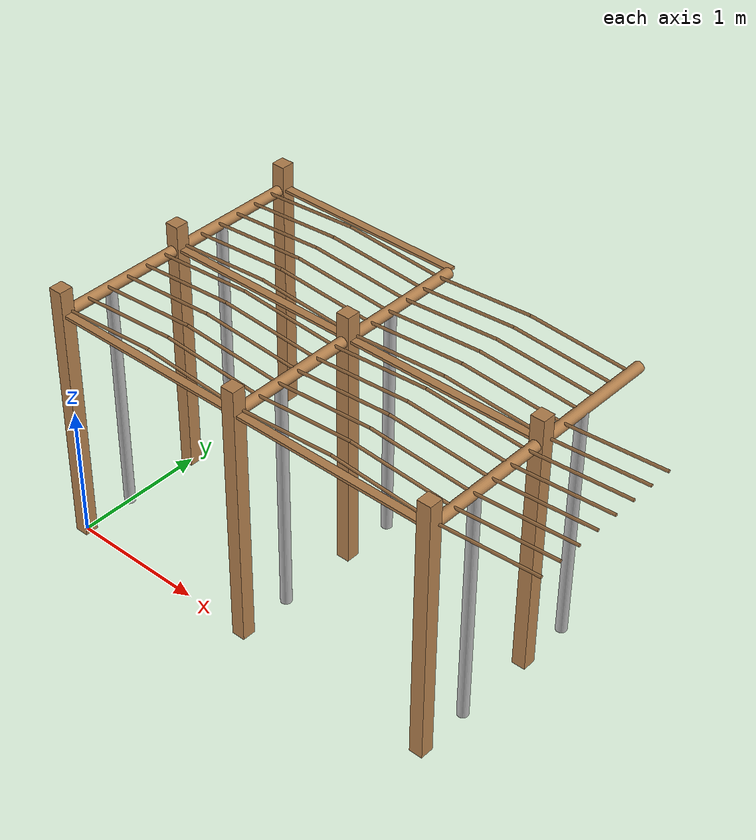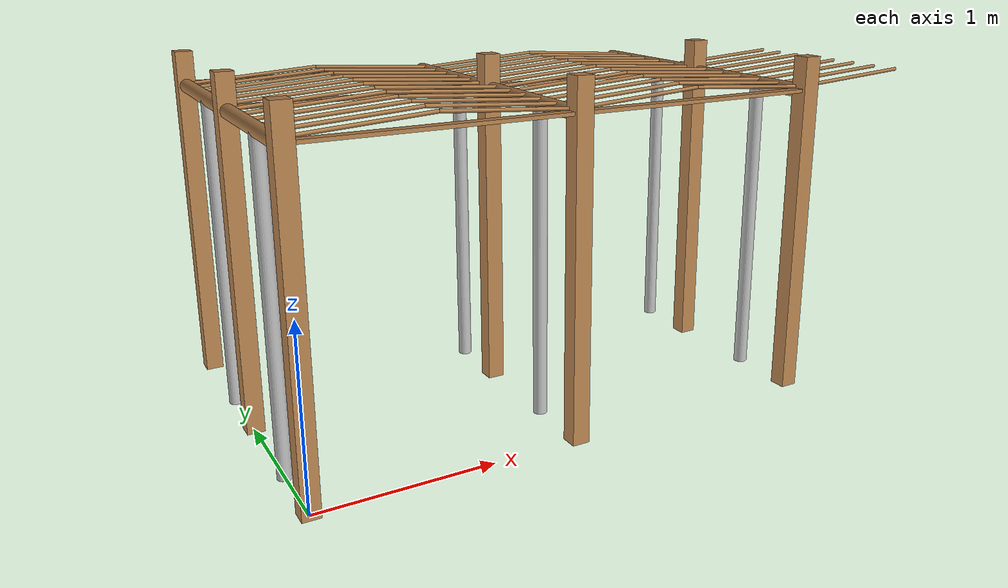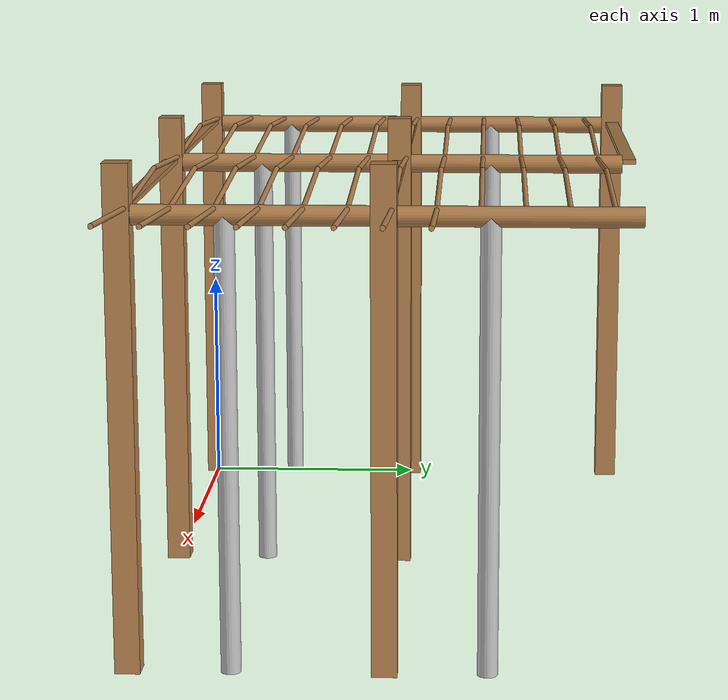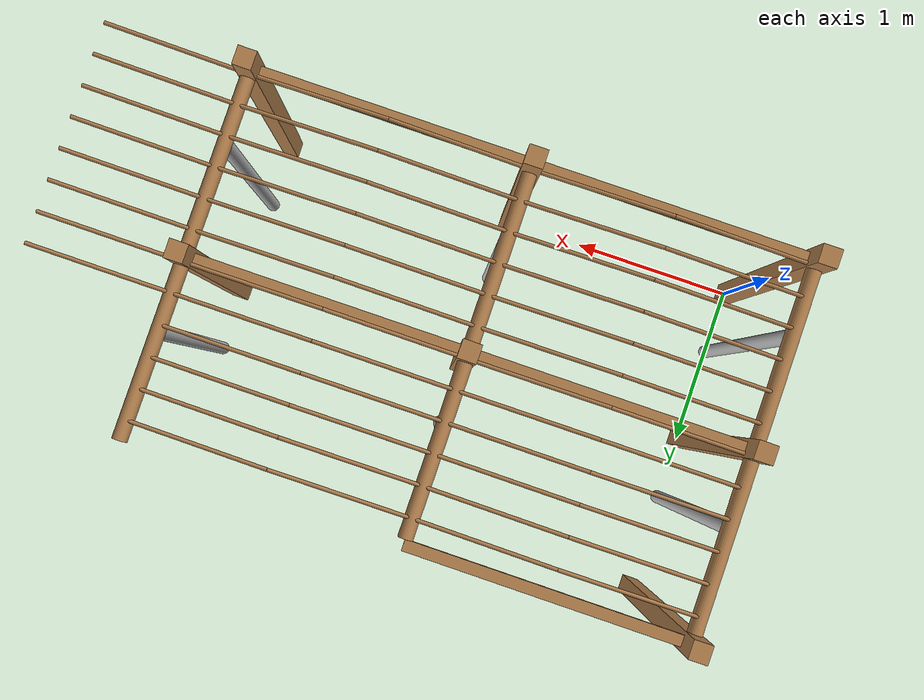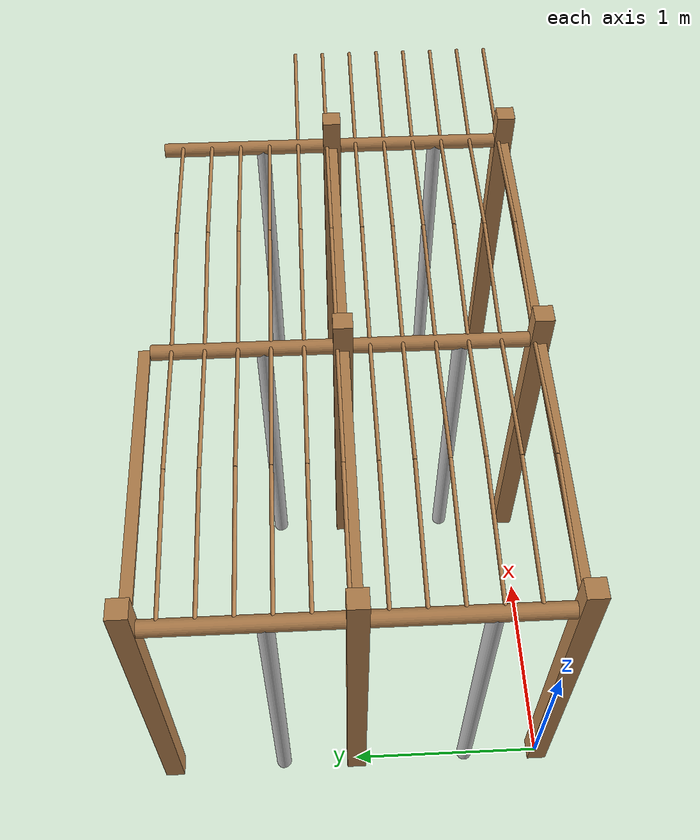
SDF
<sdf version="1.4">
 <model name="pergola">
  <include><name>post_0</name><uri>model://post</uri></include>
  <include><name>post_1</name><pose>0.0 1.0 0 0 0 0</pose><uri>model://post</uri></include>
  <include><name>post_2</name><pose>0.0 2.0 0 0 0 0</pose><uri>model://post</uri></include>
  <include><name>post_11</name><pose>1.5 0.0 0 0 0 0</pose><uri>model://post</uri></include>
  <include><name>post_12</name><pose>1.5 1.0 0 0 0 0</pose><uri>model://post</uri></include>
  <include><name>post_22</name><pose>3.0 0.0 0 0 0 0</pose><uri>model://post</uri></include>
  <include><name>post_23</name><pose>3.0 1.0 0 0 0 0</pose><uri>model://post</uri></include>
  <link name="beam_0">
   <pose>0.75 0.0 1.81 0 0 0</pose>
   <collision name="collision"><geometry><box><size>1.5 0.06 0.02</size></box></geometry></collision>
   <visual name="visual">
    <geometry><box><size>1.5 0.06 0.02</size></box></geometry>
    <material><script><name>Gazebo/Wood</name></script></material>
   </visual>
   <inertial>
    <mass>5</mass>
    <inertia>
     <ixx>0.0016666666666666668</ixx>
     <ixy>0.0</ixy>
     <ixz>0.0</ixz>
     <iyy>0.9390000000000001</iyy>
     <iyz>0.0</iyz>
     <izz>0.9376666666666665</izz>
    </inertia>
   </inertial>
  </link>
  <link name="beam_1">
   <pose>0.75 1.0 1.81 0 0 0</pose>
   <collision name="collision"><geometry><box><size>1.5 0.06 0.02</size></box></geometry></collision>
   <visual name="visual">
    <geometry><box><size>1.5 0.06 0.02</size></box></geometry>
    <material><script><name>Gazebo/Wood</name></script></material>
   </visual>
   <inertial>
    <mass>5</mass>
    <inertia>
     <ixx>0.0016666666666666668</ixx>
     <ixy>0.0</ixy>
     <ixz>0.0</ixz>
     <iyy>0.9390000000000001</iyy>
     <iyz>0.0</iyz>
     <izz>0.9376666666666665</izz>
    </inertia>
   </inertial>
  </link>
  <link name="beam_2">
   <pose>0.75 2.0 1.81 0 0 0</pose>
   <collision name="collision"><geometry><box><size>1.5 0.06 0.02</size></box></geometry></collision>
   <visual name="visual">
    <geometry><box><size>1.5 0.06 0.02</size></box></geometry>
    <material><script><name>Gazebo/Wood</name></script></material>
   </visual>
   <inertial>
    <mass>5</mass>
    <inertia>
     <ixx>0.0016666666666666668</ixx>
     <ixy>0.0</ixy>
     <ixz>0.0</ixz>
     <iyy>0.9390000000000001</iyy>
     <iyz>0.0</iyz>
     <izz>0.9376666666666665</izz>
    </inertia>
   </inertial>
  </link>
  <link name="beam_11">
   <pose>2.25 0.0 1.81 0 0 0</pose>
   <collision name="collision"><geometry><box><size>1.5 0.06 0.02</size></box></geometry></collision>
   <visual name="visual">
    <geometry><box><size>1.5 0.06 0.02</size></box></geometry>
    <material><script><name>Gazebo/Wood</name></script></material>
   </visual>
   <inertial>
    <mass>5</mass>
    <inertia>
     <ixx>0.0016666666666666668</ixx>
     <ixy>0.0</ixy>
     <ixz>0.0</ixz>
     <iyy>0.9390000000000001</iyy>
     <iyz>0.0</iyz>
     <izz>0.9376666666666665</izz>
    </inertia>
   </inertial>
  </link>
  <link name="beam_12">
   <pose>2.25 1.0 1.81 0 0 0</pose>
   <collision name="collision"><geometry><box><size>1.5 0.06 0.02</size></box></geometry></collision>
   <visual name="visual">
    <geometry><box><size>1.5 0.06 0.02</size></box></geometry>
    <material><script><name>Gazebo/Wood</name></script></material>
   </visual>
   <inertial>
    <mass>5</mass>
    <inertia>
     <ixx>0.0016666666666666668</ixx>
     <ixy>0.0</ixy>
     <ixz>0.0</ixz>
     <iyy>0.9390000000000001</iyy>
     <iyz>0.0</iyz>
     <izz>0.9376666666666665</izz>
    </inertia>
   </inertial>
  </link>
  <include><name>tree_0</name><pose>0.0 0.4 0 0 0 0</pose><uri>model://tree_trunk</uri></include>
  <include><name>tree_1</name><pose>0.0 1.4 0 0 0 0</pose><uri>model://tree_trunk</uri></include>
  <include><name>tree_10</name><pose>1.5 0.4 0 0 0 0</pose><uri>model://tree_trunk</uri></include>
  <include><name>tree_11</name><pose>1.5 1.4 0 0 0 0</pose><uri>model://tree_trunk</uri></include>
  <include><name>tree_20</name><pose>3.0 0.4 0 0 0 0</pose><uri>model://tree_trunk</uri></include>
  <include><name>tree_21</name><pose>3.0 1.4 0 0 0 0</pose><uri>model://tree_trunk</uri></include>
  <link name="baseBranch_0">
   <pose>0.0 0.5 1.8 1.5707963267948966 0 0</pose>
   <collision name="collision">
    <geometry><cylinder><radius>0.04</radius><length>0.94</length></cylinder></geometry>
   </collision>
   <visual name="visual">
    <geometry><cylinder><radius>0.04</radius><length>0.94</length></cylinder></geometry>
    <material><script><name>Gazebo/WoodFloor</name></script></material>
   </visual>
   <inertial>
    <mass>10</mass>
    <inertia>
     <ixx>0.7403333333333334</ixx>
     <ixy>0.0</ixy>
     <ixz>0.0</ixz>
     <iyy>0.7403333333333334</iyy>
     <iyz>0.0</iyz>
     <izz>0.008</izz>
    </inertia>
   </inertial>
  </link>
  <link name="baseBranch_1">
   <pose>0.0 1.5 1.8 1.5707963267948966 0 0</pose>
   <collision name="collision">
    <geometry><cylinder><radius>0.04</radius><length>0.94</length></cylinder></geometry>
   </collision>
   <visual name="visual">
    <geometry><cylinder><radius>0.04</radius><length>0.94</length></cylinder></geometry>
    <material><script><name>Gazebo/WoodFloor</name></script></material>
   </visual>
   <inertial>
    <mass>10</mass>
    <inertia>
     <ixx>0.7403333333333334</ixx>
     <ixy>0.0</ixy>
     <ixz>0.0</ixz>
     <iyy>0.7403333333333334</iyy>
     <iyz>0.0</iyz>
     <izz>0.008</izz>
    </inertia>
   </inertial>
  </link>
  <link name="baseBranch_10">
   <pose>1.5 0.5 1.8 1.5707963267948966 0 0</pose>
   <collision name="collision">
    <geometry><cylinder><radius>0.04</radius><length>0.94</length></cylinder></geometry>
   </collision>
   <visual name="visual">
    <geometry><cylinder><radius>0.04</radius><length>0.94</length></cylinder></geometry>
    <material><script><name>Gazebo/WoodFloor</name></script></material>
   </visual>
   <inertial>
    <mass>10</mass>
    <inertia>
     <ixx>0.7403333333333334</ixx>
     <ixy>0.0</ixy>
     <ixz>0.0</ixz>
     <iyy>0.7403333333333334</iyy>
     <iyz>0.0</iyz>
     <izz>0.008</izz>
    </inertia>
   </inertial>
  </link>
  <link name="baseBranch_11">
   <pose>1.5 1.5 1.8 1.5707963267948966 0 0</pose>
   <collision name="collision">
    <geometry><cylinder><radius>0.04</radius><length>0.94</length></cylinder></geometry>
   </collision>
   <visual name="visual">
    <geometry><cylinder><radius>0.04</radius><length>0.94</length></cylinder></geometry>
    <material><script><name>Gazebo/WoodFloor</name></script></material>
   </visual>
   <inertial>
    <mass>10</mass>
    <inertia>
     <ixx>0.7403333333333334</ixx>
     <ixy>0.0</ixy>
     <ixz>0.0</ixz>
     <iyy>0.7403333333333334</iyy>
     <iyz>0.0</iyz>
     <izz>0.008</izz>
    </inertia>
   </inertial>
  </link>
  <link name="baseBranch_20">
   <pose>3.0 0.5 1.8 1.5707963267948966 0 0</pose>
   <collision name="collision">
    <geometry><cylinder><radius>0.04</radius><length>0.94</length></cylinder></geometry>
   </collision>
   <visual name="visual">
    <geometry><cylinder><radius>0.04</radius><length>0.94</length></cylinder></geometry>
    <material><script><name>Gazebo/WoodFloor</name></script></material>
   </visual>
   <inertial>
    <mass>10</mass>
    <inertia>
     <ixx>0.7403333333333334</ixx>
     <ixy>0.0</ixy>
     <ixz>0.0</ixz>
     <iyy>0.7403333333333334</iyy>
     <iyz>0.0</iyz>
     <izz>0.008</izz>
    </inertia>
   </inertial>
  </link>
  <link name="baseBranch_21">
   <pose>3.0 1.5 1.8 1.5707963267948966 0 0</pose>
   <collision name="collision">
    <geometry><cylinder><radius>0.04</radius><length>0.94</length></cylinder></geometry>
   </collision>
   <visual name="visual">
    <geometry><cylinder><radius>0.04</radius><length>0.94</length></cylinder></geometry>
    <material><script><name>Gazebo/WoodFloor</name></script></material>
   </visual>
   <inertial>
    <mass>10</mass>
    <inertia>
     <ixx>0.7403333333333334</ixx>
     <ixy>0.0</ixy>
     <ixz>0.0</ixz>
     <iyy>0.7403333333333334</iyy>
     <iyz>0.0</iyz>
     <izz>0.008</izz>
    </inertia>
   </inertial>
  </link>
  <link name="vine_0">
   <pose>0.375 0.03 1.85 0 1.5042281630190728 0</pose>
   <collision name="collision">
    <geometry><cylinder><radius>0.01</radius><length>0.7516648189186453</length></cylinder></geometry>
   </collision>
   <visual name="visual">
    <geometry><cylinder><radius>0.01</radius><length>0.7516648189186453</length></cylinder></geometry>
    <material><script><name>Gazebo/WoodFloor</name></script></material>
   </visual>
   <inertial>
    <mass>5</mass>
    <inertia>
     <ixx>0.23554166666666657</ixx>
     <ixy>0.0</ixy>
     <ixz>0.0</ixz>
     <iyy>0.23554166666666657</iyy>
     <iyz>0.0</iyz>
     <izz>0.00025</izz>
    </inertia>
   </inertial>
  </link>
  <link name="vine_1">
   <pose>1.125 0.03 1.85 0 -1.5042281630190728 0</pose>
   <collision name="collision">
    <geometry><cylinder><radius>0.01</radius><length>0.7516648189186453</length></cylinder></geometry>
   </collision>
   <visual name="visual">
    <geometry><cylinder><radius>0.01</radius><length>0.7516648189186453</length></cylinder></geometry>
    <material><script><name>Gazebo/WoodFloor</name></script></material>
   </visual>
   <inertial>
    <mass>5</mass>
    <inertia>
     <ixx>0.23554166666666657</ixx>
     <ixy>0.0</ixy>
     <ixz>0.0</ixz>
     <iyy>0.23554166666666657</iyy>
     <iyz>0.0</iyz>
     <izz>0.00025</izz>
    </inertia>
   </inertial>
  </link>
  <link name="vine_2">
   <pose>0.375 0.19666666666666666 1.85 0 1.5042281630190728 0</pose>
   <collision name="collision">
    <geometry><cylinder><radius>0.01</radius><length>0.7516648189186453</length></cylinder></geometry>
   </collision>
   <visual name="visual">
    <geometry><cylinder><radius>0.01</radius><length>0.7516648189186453</length></cylinder></geometry>
    <material><script><name>Gazebo/WoodFloor</name></script></material>
   </visual>
   <inertial>
    <mass>5</mass>
    <inertia>
     <ixx>0.23554166666666657</ixx>
     <ixy>0.0</ixy>
     <ixz>0.0</ixz>
     <iyy>0.23554166666666657</iyy>
     <iyz>0.0</iyz>
     <izz>0.00025</izz>
    </inertia>
   </inertial>
  </link>
  <link name="vine_3">
   <pose>1.125 0.19666666666666666 1.85 0 -1.5042281630190728 0</pose>
   <collision name="collision">
    <geometry><cylinder><radius>0.01</radius><length>0.7516648189186453</length></cylinder></geometry>
   </collision>
   <visual name="visual">
    <geometry><cylinder><radius>0.01</radius><length>0.7516648189186453</length></cylinder></geometry>
    <material><script><name>Gazebo/WoodFloor</name></script></material>
   </visual>
   <inertial>
    <mass>5</mass>
    <inertia>
     <ixx>0.23554166666666657</ixx>
     <ixy>0.0</ixy>
     <ixz>0.0</ixz>
     <iyy>0.23554166666666657</iyy>
     <iyz>0.0</iyz>
     <izz>0.00025</izz>
    </inertia>
   </inertial>
  </link>
  <link name="vine_4">
   <pose>0.375 0.3633333333333333 1.85 0 1.5042281630190728 0</pose>
   <collision name="collision">
    <geometry><cylinder><radius>0.01</radius><length>0.7516648189186453</length></cylinder></geometry>
   </collision>
   <visual name="visual">
    <geometry><cylinder><radius>0.01</radius><length>0.7516648189186453</length></cylinder></geometry>
    <material><script><name>Gazebo/WoodFloor</name></script></material>
   </visual>
   <inertial>
    <mass>5</mass>
    <inertia>
     <ixx>0.23554166666666657</ixx>
     <ixy>0.0</ixy>
     <ixz>0.0</ixz>
     <iyy>0.23554166666666657</iyy>
     <iyz>0.0</iyz>
     <izz>0.00025</izz>
    </inertia>
   </inertial>
  </link>
  <link name="vine_5">
   <pose>1.125 0.3633333333333333 1.85 0 -1.5042281630190728 0</pose>
   <collision name="collision">
    <geometry><cylinder><radius>0.01</radius><length>0.7516648189186453</length></cylinder></geometry>
   </collision>
   <visual name="visual">
    <geometry><cylinder><radius>0.01</radius><length>0.7516648189186453</length></cylinder></geometry>
    <material><script><name>Gazebo/WoodFloor</name></script></material>
   </visual>
   <inertial>
    <mass>5</mass>
    <inertia>
     <ixx>0.23554166666666657</ixx>
     <ixy>0.0</ixy>
     <ixz>0.0</ixz>
     <iyy>0.23554166666666657</iyy>
     <iyz>0.0</iyz>
     <izz>0.00025</izz>
    </inertia>
   </inertial>
  </link>
  <link name="vine_6">
   <pose>0.375 0.53 1.85 0 1.5042281630190728 0</pose>
   <collision name="collision">
    <geometry><cylinder><radius>0.01</radius><length>0.7516648189186453</length></cylinder></geometry>
   </collision>
   <visual name="visual">
    <geometry><cylinder><radius>0.01</radius><length>0.7516648189186453</length></cylinder></geometry>
    <material><script><name>Gazebo/WoodFloor</name></script></material>
   </visual>
   <inertial>
    <mass>5</mass>
    <inertia>
     <ixx>0.23554166666666657</ixx>
     <ixy>0.0</ixy>
     <ixz>0.0</ixz>
     <iyy>0.23554166666666657</iyy>
     <iyz>0.0</iyz>
     <izz>0.00025</izz>
    </inertia>
   </inertial>
  </link>
  <link name="vine_7">
   <pose>1.125 0.53 1.85 0 -1.5042281630190728 0</pose>
   <collision name="collision">
    <geometry><cylinder><radius>0.01</radius><length>0.7516648189186453</length></cylinder></geometry>
   </collision>
   <visual name="visual">
    <geometry><cylinder><radius>0.01</radius><length>0.7516648189186453</length></cylinder></geometry>
    <material><script><name>Gazebo/WoodFloor</name></script></material>
   </visual>
   <inertial>
    <mass>5</mass>
    <inertia>
     <ixx>0.23554166666666657</ixx>
     <ixy>0.0</ixy>
     <ixz>0.0</ixz>
     <iyy>0.23554166666666657</iyy>
     <iyz>0.0</iyz>
     <izz>0.00025</izz>
    </inertia>
   </inertial>
  </link>
  <link name="vine_8">
   <pose>0.375 0.6966666666666667 1.85 0 1.5042281630190728 0</pose>
   <collision name="collision">
    <geometry><cylinder><radius>0.01</radius><length>0.7516648189186453</length></cylinder></geometry>
   </collision>
   <visual name="visual">
    <geometry><cylinder><radius>0.01</radius><length>0.7516648189186453</length></cylinder></geometry>
    <material><script><name>Gazebo/WoodFloor</name></script></material>
   </visual>
   <inertial>
    <mass>5</mass>
    <inertia>
     <ixx>0.23554166666666657</ixx>
     <ixy>0.0</ixy>
     <ixz>0.0</ixz>
     <iyy>0.23554166666666657</iyy>
     <iyz>0.0</iyz>
     <izz>0.00025</izz>
    </inertia>
   </inertial>
  </link>
  <link name="vine_9">
   <pose>1.125 0.6966666666666667 1.85 0 -1.5042281630190728 0</pose>
   <collision name="collision">
    <geometry><cylinder><radius>0.01</radius><length>0.7516648189186453</length></cylinder></geometry>
   </collision>
   <visual name="visual">
    <geometry><cylinder><radius>0.01</radius><length>0.7516648189186453</length></cylinder></geometry>
    <material><script><name>Gazebo/WoodFloor</name></script></material>
   </visual>
   <inertial>
    <mass>5</mass>
    <inertia>
     <ixx>0.23554166666666657</ixx>
     <ixy>0.0</ixy>
     <ixz>0.0</ixz>
     <iyy>0.23554166666666657</iyy>
     <iyz>0.0</iyz>
     <izz>0.00025</izz>
    </inertia>
   </inertial>
  </link>
  <link name="vine_10">
   <pose>0.375 0.8633333333333333 1.85 0 1.5042281630190728 0</pose>
   <collision name="collision">
    <geometry><cylinder><radius>0.01</radius><length>0.7516648189186453</length></cylinder></geometry>
   </collision>
   <visual name="visual">
    <geometry><cylinder><radius>0.01</radius><length>0.7516648189186453</length></cylinder></geometry>
    <material><script><name>Gazebo/WoodFloor</name></script></material>
   </visual>
   <inertial>
    <mass>5</mass>
    <inertia>
     <ixx>0.23554166666666657</ixx>
     <ixy>0.0</ixy>
     <ixz>0.0</ixz>
     <iyy>0.23554166666666657</iyy>
     <iyz>0.0</iyz>
     <izz>0.00025</izz>
    </inertia>
   </inertial>
  </link>
  <link name="vine_11">
   <pose>1.125 0.8633333333333333 1.85 0 -1.5042281630190728 0</pose>
   <collision name="collision">
    <geometry><cylinder><radius>0.01</radius><length>0.7516648189186453</length></cylinder></geometry>
   </collision>
   <visual name="visual">
    <geometry><cylinder><radius>0.01</radius><length>0.7516648189186453</length></cylinder></geometry>
    <material><script><name>Gazebo/WoodFloor</name></script></material>
   </visual>
   <inertial>
    <mass>5</mass>
    <inertia>
     <ixx>0.23554166666666657</ixx>
     <ixy>0.0</ixy>
     <ixz>0.0</ixz>
     <iyy>0.23554166666666657</iyy>
     <iyz>0.0</iyz>
     <izz>0.00025</izz>
    </inertia>
   </inertial>
  </link>
  <link name="vine_12">
   <pose>0.375 1.03 1.85 0 1.5042281630190728 0</pose>
   <collision name="collision">
    <geometry><cylinder><radius>0.01</radius><length>0.7516648189186453</length></cylinder></geometry>
   </collision>
   <visual name="visual">
    <geometry><cylinder><radius>0.01</radius><length>0.7516648189186453</length></cylinder></geometry>
    <material><script><name>Gazebo/WoodFloor</name></script></material>
   </visual>
   <inertial>
    <mass>5</mass>
    <inertia>
     <ixx>0.23554166666666657</ixx>
     <ixy>0.0</ixy>
     <ixz>0.0</ixz>
     <iyy>0.23554166666666657</iyy>
     <iyz>0.0</iyz>
     <izz>0.00025</izz>
    </inertia>
   </inertial>
  </link>
  <link name="vine_13">
   <pose>1.125 1.03 1.85 0 -1.5042281630190728 0</pose>
   <collision name="collision">
    <geometry><cylinder><radius>0.01</radius><length>0.7516648189186453</length></cylinder></geometry>
   </collision>
   <visual name="visual">
    <geometry><cylinder><radius>0.01</radius><length>0.7516648189186453</length></cylinder></geometry>
    <material><script><name>Gazebo/WoodFloor</name></script></material>
   </visual>
   <inertial>
    <mass>5</mass>
    <inertia>
     <ixx>0.23554166666666657</ixx>
     <ixy>0.0</ixy>
     <ixz>0.0</ixz>
     <iyy>0.23554166666666657</iyy>
     <iyz>0.0</iyz>
     <izz>0.00025</izz>
    </inertia>
   </inertial>
  </link>
  <link name="vine_14">
   <pose>0.375 1.1966666666666665 1.85 0 1.5042281630190728 0</pose>
   <collision name="collision">
    <geometry><cylinder><radius>0.01</radius><length>0.7516648189186453</length></cylinder></geometry>
   </collision>
   <visual name="visual">
    <geometry><cylinder><radius>0.01</radius><length>0.7516648189186453</length></cylinder></geometry>
    <material><script><name>Gazebo/WoodFloor</name></script></material>
   </visual>
   <inertial>
    <mass>5</mass>
    <inertia>
     <ixx>0.23554166666666657</ixx>
     <ixy>0.0</ixy>
     <ixz>0.0</ixz>
     <iyy>0.23554166666666657</iyy>
     <iyz>0.0</iyz>
     <izz>0.00025</izz>
    </inertia>
   </inertial>
  </link>
  <link name="vine_15">
   <pose>1.125 1.1966666666666665 1.85 0 -1.5042281630190728 0</pose>
   <collision name="collision">
    <geometry><cylinder><radius>0.01</radius><length>0.7516648189186453</length></cylinder></geometry>
   </collision>
   <visual name="visual">
    <geometry><cylinder><radius>0.01</radius><length>0.7516648189186453</length></cylinder></geometry>
    <material><script><name>Gazebo/WoodFloor</name></script></material>
   </visual>
   <inertial>
    <mass>5</mass>
    <inertia>
     <ixx>0.23554166666666657</ixx>
     <ixy>0.0</ixy>
     <ixz>0.0</ixz>
     <iyy>0.23554166666666657</iyy>
     <iyz>0.0</iyz>
     <izz>0.00025</izz>
    </inertia>
   </inertial>
  </link>
  <link name="vine_16">
   <pose>0.375 1.3633333333333333 1.85 0 1.5042281630190728 0</pose>
   <collision name="collision">
    <geometry><cylinder><radius>0.01</radius><length>0.7516648189186453</length></cylinder></geometry>
   </collision>
   <visual name="visual">
    <geometry><cylinder><radius>0.01</radius><length>0.7516648189186453</length></cylinder></geometry>
    <material><script><name>Gazebo/WoodFloor</name></script></material>
   </visual>
   <inertial>
    <mass>5</mass>
    <inertia>
     <ixx>0.23554166666666657</ixx>
     <ixy>0.0</ixy>
     <ixz>0.0</ixz>
     <iyy>0.23554166666666657</iyy>
     <iyz>0.0</iyz>
     <izz>0.00025</izz>
    </inertia>
   </inertial>
  </link>
  <link name="vine_17">
   <pose>1.125 1.3633333333333333 1.85 0 -1.5042281630190728 0</pose>
   <collision name="collision">
    <geometry><cylinder><radius>0.01</radius><length>0.7516648189186453</length></cylinder></geometry>
   </collision>
   <visual name="visual">
    <geometry><cylinder><radius>0.01</radius><length>0.7516648189186453</length></cylinder></geometry>
    <material><script><name>Gazebo/WoodFloor</name></script></material>
   </visual>
   <inertial>
    <mass>5</mass>
    <inertia>
     <ixx>0.23554166666666657</ixx>
     <ixy>0.0</ixy>
     <ixz>0.0</ixz>
     <iyy>0.23554166666666657</iyy>
     <iyz>0.0</iyz>
     <izz>0.00025</izz>
    </inertia>
   </inertial>
  </link>
  <link name="vine_18">
   <pose>0.375 1.53 1.85 0 1.5042281630190728 0</pose>
   <collision name="collision">
    <geometry><cylinder><radius>0.01</radius><length>0.7516648189186453</length></cylinder></geometry>
   </collision>
   <visual name="visual">
    <geometry><cylinder><radius>0.01</radius><length>0.7516648189186453</length></cylinder></geometry>
    <material><script><name>Gazebo/WoodFloor</name></script></material>
   </visual>
   <inertial>
    <mass>5</mass>
    <inertia>
     <ixx>0.23554166666666657</ixx>
     <ixy>0.0</ixy>
     <ixz>0.0</ixz>
     <iyy>0.23554166666666657</iyy>
     <iyz>0.0</iyz>
     <izz>0.00025</izz>
    </inertia>
   </inertial>
  </link>
  <link name="vine_19">
   <pose>1.125 1.53 1.85 0 -1.5042281630190728 0</pose>
   <collision name="collision">
    <geometry><cylinder><radius>0.01</radius><length>0.7516648189186453</length></cylinder></geometry>
   </collision>
   <visual name="visual">
    <geometry><cylinder><radius>0.01</radius><length>0.7516648189186453</length></cylinder></geometry>
    <material><script><name>Gazebo/WoodFloor</name></script></material>
   </visual>
   <inertial>
    <mass>5</mass>
    <inertia>
     <ixx>0.23554166666666657</ixx>
     <ixy>0.0</ixy>
     <ixz>0.0</ixz>
     <iyy>0.23554166666666657</iyy>
     <iyz>0.0</iyz>
     <izz>0.00025</izz>
    </inertia>
   </inertial>
  </link>
  <link name="vine_20">
   <pose>0.375 1.6966666666666665 1.85 0 1.5042281630190728 0</pose>
   <collision name="collision">
    <geometry><cylinder><radius>0.01</radius><length>0.7516648189186453</length></cylinder></geometry>
   </collision>
   <visual name="visual">
    <geometry><cylinder><radius>0.01</radius><length>0.7516648189186453</length></cylinder></geometry>
    <material><script><name>Gazebo/WoodFloor</name></script></material>
   </visual>
   <inertial>
    <mass>5</mass>
    <inertia>
     <ixx>0.23554166666666657</ixx>
     <ixy>0.0</ixy>
     <ixz>0.0</ixz>
     <iyy>0.23554166666666657</iyy>
     <iyz>0.0</iyz>
     <izz>0.00025</izz>
    </inertia>
   </inertial>
  </link>
  <link name="vine_21">
   <pose>1.125 1.6966666666666665 1.85 0 -1.5042281630190728 0</pose>
   <collision name="collision">
    <geometry><cylinder><radius>0.01</radius><length>0.7516648189186453</length></cylinder></geometry>
   </collision>
   <visual name="visual">
    <geometry><cylinder><radius>0.01</radius><length>0.7516648189186453</length></cylinder></geometry>
    <material><script><name>Gazebo/WoodFloor</name></script></material>
   </visual>
   <inertial>
    <mass>5</mass>
    <inertia>
     <ixx>0.23554166666666657</ixx>
     <ixy>0.0</ixy>
     <ixz>0.0</ixz>
     <iyy>0.23554166666666657</iyy>
     <iyz>0.0</iyz>
     <izz>0.00025</izz>
    </inertia>
   </inertial>
  </link>
  <link name="vine_22">
   <pose>0.375 1.8633333333333333 1.85 0 1.5042281630190728 0</pose>
   <collision name="collision">
    <geometry><cylinder><radius>0.01</radius><length>0.7516648189186453</length></cylinder></geometry>
   </collision>
   <visual name="visual">
    <geometry><cylinder><radius>0.01</radius><length>0.7516648189186453</length></cylinder></geometry>
    <material><script><name>Gazebo/WoodFloor</name></script></material>
   </visual>
   <inertial>
    <mass>5</mass>
    <inertia>
     <ixx>0.23554166666666657</ixx>
     <ixy>0.0</ixy>
     <ixz>0.0</ixz>
     <iyy>0.23554166666666657</iyy>
     <iyz>0.0</iyz>
     <izz>0.00025</izz>
    </inertia>
   </inertial>
  </link>
  <link name="vine_23">
   <pose>1.125 1.8633333333333333 1.85 0 -1.5042281630190728 0</pose>
   <collision name="collision">
    <geometry><cylinder><radius>0.01</radius><length>0.7516648189186453</length></cylinder></geometry>
   </collision>
   <visual name="visual">
    <geometry><cylinder><radius>0.01</radius><length>0.7516648189186453</length></cylinder></geometry>
    <material><script><name>Gazebo/WoodFloor</name></script></material>
   </visual>
   <inertial>
    <mass>5</mass>
    <inertia>
     <ixx>0.23554166666666657</ixx>
     <ixy>0.0</ixy>
     <ixz>0.0</ixz>
     <iyy>0.23554166666666657</iyy>
     <iyz>0.0</iyz>
     <izz>0.00025</izz>
    </inertia>
   </inertial>
  </link>
  <link name="vine_120">
   <pose>1.875 0.03 1.85 0 1.5042281630190728 0</pose>
   <collision name="collision">
    <geometry><cylinder><radius>0.01</radius><length>0.7516648189186453</length></cylinder></geometry>
   </collision>
   <visual name="visual">
    <geometry><cylinder><radius>0.01</radius><length>0.7516648189186453</length></cylinder></geometry>
    <material><script><name>Gazebo/WoodFloor</name></script></material>
   </visual>
   <inertial>
    <mass>5</mass>
    <inertia>
     <ixx>0.23554166666666657</ixx>
     <ixy>0.0</ixy>
     <ixz>0.0</ixz>
     <iyy>0.23554166666666657</iyy>
     <iyz>0.0</iyz>
     <izz>0.00025</izz>
    </inertia>
   </inertial>
  </link>
  <link name="vine_121">
   <pose>2.625 0.03 1.85 0 -1.5042281630190728 0</pose>
   <collision name="collision">
    <geometry><cylinder><radius>0.01</radius><length>0.7516648189186453</length></cylinder></geometry>
   </collision>
   <visual name="visual">
    <geometry><cylinder><radius>0.01</radius><length>0.7516648189186453</length></cylinder></geometry>
    <material><script><name>Gazebo/WoodFloor</name></script></material>
   </visual>
   <inertial>
    <mass>5</mass>
    <inertia>
     <ixx>0.23554166666666657</ixx>
     <ixy>0.0</ixy>
     <ixz>0.0</ixz>
     <iyy>0.23554166666666657</iyy>
     <iyz>0.0</iyz>
     <izz>0.00025</izz>
    </inertia>
   </inertial>
  </link>
  <link name="vine_122">
   <pose>1.875 0.19666666666666666 1.85 0 1.5042281630190728 0</pose>
   <collision name="collision">
    <geometry><cylinder><radius>0.01</radius><length>0.7516648189186453</length></cylinder></geometry>
   </collision>
   <visual name="visual">
    <geometry><cylinder><radius>0.01</radius><length>0.7516648189186453</length></cylinder></geometry>
    <material><script><name>Gazebo/WoodFloor</name></script></material>
   </visual>
   <inertial>
    <mass>5</mass>
    <inertia>
     <ixx>0.23554166666666657</ixx>
     <ixy>0.0</ixy>
     <ixz>0.0</ixz>
     <iyy>0.23554166666666657</iyy>
     <iyz>0.0</iyz>
     <izz>0.00025</izz>
    </inertia>
   </inertial>
  </link>
  <link name="vine_123">
   <pose>2.625 0.19666666666666666 1.85 0 -1.5042281630190728 0</pose>
   <collision name="collision">
    <geometry><cylinder><radius>0.01</radius><length>0.7516648189186453</length></cylinder></geometry>
   </collision>
   <visual name="visual">
    <geometry><cylinder><radius>0.01</radius><length>0.7516648189186453</length></cylinder></geometry>
    <material><script><name>Gazebo/WoodFloor</name></script></material>
   </visual>
   <inertial>
    <mass>5</mass>
    <inertia>
     <ixx>0.23554166666666657</ixx>
     <ixy>0.0</ixy>
     <ixz>0.0</ixz>
     <iyy>0.23554166666666657</iyy>
     <iyz>0.0</iyz>
     <izz>0.00025</izz>
    </inertia>
   </inertial>
  </link>
  <link name="vine_124">
   <pose>1.875 0.3633333333333333 1.85 0 1.5042281630190728 0</pose>
   <collision name="collision">
    <geometry><cylinder><radius>0.01</radius><length>0.7516648189186453</length></cylinder></geometry>
   </collision>
   <visual name="visual">
    <geometry><cylinder><radius>0.01</radius><length>0.7516648189186453</length></cylinder></geometry>
    <material><script><name>Gazebo/WoodFloor</name></script></material>
   </visual>
   <inertial>
    <mass>5</mass>
    <inertia>
     <ixx>0.23554166666666657</ixx>
     <ixy>0.0</ixy>
     <ixz>0.0</ixz>
     <iyy>0.23554166666666657</iyy>
     <iyz>0.0</iyz>
     <izz>0.00025</izz>
    </inertia>
   </inertial>
  </link>
  <link name="vine_125">
   <pose>2.625 0.3633333333333333 1.85 0 -1.5042281630190728 0</pose>
   <collision name="collision">
    <geometry><cylinder><radius>0.01</radius><length>0.7516648189186453</length></cylinder></geometry>
   </collision>
   <visual name="visual">
    <geometry><cylinder><radius>0.01</radius><length>0.7516648189186453</length></cylinder></geometry>
    <material><script><name>Gazebo/WoodFloor</name></script></material>
   </visual>
   <inertial>
    <mass>5</mass>
    <inertia>
     <ixx>0.23554166666666657</ixx>
     <ixy>0.0</ixy>
     <ixz>0.0</ixz>
     <iyy>0.23554166666666657</iyy>
     <iyz>0.0</iyz>
     <izz>0.00025</izz>
    </inertia>
   </inertial>
  </link>
  <link name="vine_126">
   <pose>1.875 0.53 1.85 0 1.5042281630190728 0</pose>
   <collision name="collision">
    <geometry><cylinder><radius>0.01</radius><length>0.7516648189186453</length></cylinder></geometry>
   </collision>
   <visual name="visual">
    <geometry><cylinder><radius>0.01</radius><length>0.7516648189186453</length></cylinder></geometry>
    <material><script><name>Gazebo/WoodFloor</name></script></material>
   </visual>
   <inertial>
    <mass>5</mass>
    <inertia>
     <ixx>0.23554166666666657</ixx>
     <ixy>0.0</ixy>
     <ixz>0.0</ixz>
     <iyy>0.23554166666666657</iyy>
     <iyz>0.0</iyz>
     <izz>0.00025</izz>
    </inertia>
   </inertial>
  </link>
  <link name="vine_127">
   <pose>2.625 0.53 1.85 0 -1.5042281630190728 0</pose>
   <collision name="collision">
    <geometry><cylinder><radius>0.01</radius><length>0.7516648189186453</length></cylinder></geometry>
   </collision>
   <visual name="visual">
    <geometry><cylinder><radius>0.01</radius><length>0.7516648189186453</length></cylinder></geometry>
    <material><script><name>Gazebo/WoodFloor</name></script></material>
   </visual>
   <inertial>
    <mass>5</mass>
    <inertia>
     <ixx>0.23554166666666657</ixx>
     <ixy>0.0</ixy>
     <ixz>0.0</ixz>
     <iyy>0.23554166666666657</iyy>
     <iyz>0.0</iyz>
     <izz>0.00025</izz>
    </inertia>
   </inertial>
  </link>
  <link name="vine_128">
   <pose>1.875 0.6966666666666667 1.85 0 1.5042281630190728 0</pose>
   <collision name="collision">
    <geometry><cylinder><radius>0.01</radius><length>0.7516648189186453</length></cylinder></geometry>
   </collision>
   <visual name="visual">
    <geometry><cylinder><radius>0.01</radius><length>0.7516648189186453</length></cylinder></geometry>
    <material><script><name>Gazebo/WoodFloor</name></script></material>
   </visual>
   <inertial>
    <mass>5</mass>
    <inertia>
     <ixx>0.23554166666666657</ixx>
     <ixy>0.0</ixy>
     <ixz>0.0</ixz>
     <iyy>0.23554166666666657</iyy>
     <iyz>0.0</iyz>
     <izz>0.00025</izz>
    </inertia>
   </inertial>
  </link>
  <link name="vine_129">
   <pose>2.625 0.6966666666666667 1.85 0 -1.5042281630190728 0</pose>
   <collision name="collision">
    <geometry><cylinder><radius>0.01</radius><length>0.7516648189186453</length></cylinder></geometry>
   </collision>
   <visual name="visual">
    <geometry><cylinder><radius>0.01</radius><length>0.7516648189186453</length></cylinder></geometry>
    <material><script><name>Gazebo/WoodFloor</name></script></material>
   </visual>
   <inertial>
    <mass>5</mass>
    <inertia>
     <ixx>0.23554166666666657</ixx>
     <ixy>0.0</ixy>
     <ixz>0.0</ixz>
     <iyy>0.23554166666666657</iyy>
     <iyz>0.0</iyz>
     <izz>0.00025</izz>
    </inertia>
   </inertial>
  </link>
  <link name="vine_130">
   <pose>1.875 0.8633333333333333 1.85 0 1.5042281630190728 0</pose>
   <collision name="collision">
    <geometry><cylinder><radius>0.01</radius><length>0.7516648189186453</length></cylinder></geometry>
   </collision>
   <visual name="visual">
    <geometry><cylinder><radius>0.01</radius><length>0.7516648189186453</length></cylinder></geometry>
    <material><script><name>Gazebo/WoodFloor</name></script></material>
   </visual>
   <inertial>
    <mass>5</mass>
    <inertia>
     <ixx>0.23554166666666657</ixx>
     <ixy>0.0</ixy>
     <ixz>0.0</ixz>
     <iyy>0.23554166666666657</iyy>
     <iyz>0.0</iyz>
     <izz>0.00025</izz>
    </inertia>
   </inertial>
  </link>
  <link name="vine_131">
   <pose>2.625 0.8633333333333333 1.85 0 -1.5042281630190728 0</pose>
   <collision name="collision">
    <geometry><cylinder><radius>0.01</radius><length>0.7516648189186453</length></cylinder></geometry>
   </collision>
   <visual name="visual">
    <geometry><cylinder><radius>0.01</radius><length>0.7516648189186453</length></cylinder></geometry>
    <material><script><name>Gazebo/WoodFloor</name></script></material>
   </visual>
   <inertial>
    <mass>5</mass>
    <inertia>
     <ixx>0.23554166666666657</ixx>
     <ixy>0.0</ixy>
     <ixz>0.0</ixz>
     <iyy>0.23554166666666657</iyy>
     <iyz>0.0</iyz>
     <izz>0.00025</izz>
    </inertia>
   </inertial>
  </link>
  <link name="vine_132">
   <pose>1.875 1.03 1.85 0 1.5042281630190728 0</pose>
   <collision name="collision">
    <geometry><cylinder><radius>0.01</radius><length>0.7516648189186453</length></cylinder></geometry>
   </collision>
   <visual name="visual">
    <geometry><cylinder><radius>0.01</radius><length>0.7516648189186453</length></cylinder></geometry>
    <material><script><name>Gazebo/WoodFloor</name></script></material>
   </visual>
   <inertial>
    <mass>5</mass>
    <inertia>
     <ixx>0.23554166666666657</ixx>
     <ixy>0.0</ixy>
     <ixz>0.0</ixz>
     <iyy>0.23554166666666657</iyy>
     <iyz>0.0</iyz>
     <izz>0.00025</izz>
    </inertia>
   </inertial>
  </link>
  <link name="vine_133">
   <pose>2.625 1.03 1.85 0 -1.5042281630190728 0</pose>
   <collision name="collision">
    <geometry><cylinder><radius>0.01</radius><length>0.7516648189186453</length></cylinder></geometry>
   </collision>
   <visual name="visual">
    <geometry><cylinder><radius>0.01</radius><length>0.7516648189186453</length></cylinder></geometry>
    <material><script><name>Gazebo/WoodFloor</name></script></material>
   </visual>
   <inertial>
    <mass>5</mass>
    <inertia>
     <ixx>0.23554166666666657</ixx>
     <ixy>0.0</ixy>
     <ixz>0.0</ixz>
     <iyy>0.23554166666666657</iyy>
     <iyz>0.0</iyz>
     <izz>0.00025</izz>
    </inertia>
   </inertial>
  </link>
  <link name="vine_134">
   <pose>1.875 1.1966666666666665 1.85 0 1.5042281630190728 0</pose>
   <collision name="collision">
    <geometry><cylinder><radius>0.01</radius><length>0.7516648189186453</length></cylinder></geometry>
   </collision>
   <visual name="visual">
    <geometry><cylinder><radius>0.01</radius><length>0.7516648189186453</length></cylinder></geometry>
    <material><script><name>Gazebo/WoodFloor</name></script></material>
   </visual>
   <inertial>
    <mass>5</mass>
    <inertia>
     <ixx>0.23554166666666657</ixx>
     <ixy>0.0</ixy>
     <ixz>0.0</ixz>
     <iyy>0.23554166666666657</iyy>
     <iyz>0.0</iyz>
     <izz>0.00025</izz>
    </inertia>
   </inertial>
  </link>
  <link name="vine_135">
   <pose>2.625 1.1966666666666665 1.85 0 -1.5042281630190728 0</pose>
   <collision name="collision">
    <geometry><cylinder><radius>0.01</radius><length>0.7516648189186453</length></cylinder></geometry>
   </collision>
   <visual name="visual">
    <geometry><cylinder><radius>0.01</radius><length>0.7516648189186453</length></cylinder></geometry>
    <material><script><name>Gazebo/WoodFloor</name></script></material>
   </visual>
   <inertial>
    <mass>5</mass>
    <inertia>
     <ixx>0.23554166666666657</ixx>
     <ixy>0.0</ixy>
     <ixz>0.0</ixz>
     <iyy>0.23554166666666657</iyy>
     <iyz>0.0</iyz>
     <izz>0.00025</izz>
    </inertia>
   </inertial>
  </link>
  <link name="vine_136">
   <pose>1.875 1.3633333333333333 1.85 0 1.5042281630190728 0</pose>
   <collision name="collision">
    <geometry><cylinder><radius>0.01</radius><length>0.7516648189186453</length></cylinder></geometry>
   </collision>
   <visual name="visual">
    <geometry><cylinder><radius>0.01</radius><length>0.7516648189186453</length></cylinder></geometry>
    <material><script><name>Gazebo/WoodFloor</name></script></material>
   </visual>
   <inertial>
    <mass>5</mass>
    <inertia>
     <ixx>0.23554166666666657</ixx>
     <ixy>0.0</ixy>
     <ixz>0.0</ixz>
     <iyy>0.23554166666666657</iyy>
     <iyz>0.0</iyz>
     <izz>0.00025</izz>
    </inertia>
   </inertial>
  </link>
  <link name="vine_137">
   <pose>2.625 1.3633333333333333 1.85 0 -1.5042281630190728 0</pose>
   <collision name="collision">
    <geometry><cylinder><radius>0.01</radius><length>0.7516648189186453</length></cylinder></geometry>
   </collision>
   <visual name="visual">
    <geometry><cylinder><radius>0.01</radius><length>0.7516648189186453</length></cylinder></geometry>
    <material><script><name>Gazebo/WoodFloor</name></script></material>
   </visual>
   <inertial>
    <mass>5</mass>
    <inertia>
     <ixx>0.23554166666666657</ixx>
     <ixy>0.0</ixy>
     <ixz>0.0</ixz>
     <iyy>0.23554166666666657</iyy>
     <iyz>0.0</iyz>
     <izz>0.00025</izz>
    </inertia>
   </inertial>
  </link>
  <link name="vine_138">
   <pose>1.875 1.53 1.85 0 1.5042281630190728 0</pose>
   <collision name="collision">
    <geometry><cylinder><radius>0.01</radius><length>0.7516648189186453</length></cylinder></geometry>
   </collision>
   <visual name="visual">
    <geometry><cylinder><radius>0.01</radius><length>0.7516648189186453</length></cylinder></geometry>
    <material><script><name>Gazebo/WoodFloor</name></script></material>
   </visual>
   <inertial>
    <mass>5</mass>
    <inertia>
     <ixx>0.23554166666666657</ixx>
     <ixy>0.0</ixy>
     <ixz>0.0</ixz>
     <iyy>0.23554166666666657</iyy>
     <iyz>0.0</iyz>
     <izz>0.00025</izz>
    </inertia>
   </inertial>
  </link>
  <link name="vine_139">
   <pose>2.625 1.53 1.85 0 -1.5042281630190728 0</pose>
   <collision name="collision">
    <geometry><cylinder><radius>0.01</radius><length>0.7516648189186453</length></cylinder></geometry>
   </collision>
   <visual name="visual">
    <geometry><cylinder><radius>0.01</radius><length>0.7516648189186453</length></cylinder></geometry>
    <material><script><name>Gazebo/WoodFloor</name></script></material>
   </visual>
   <inertial>
    <mass>5</mass>
    <inertia>
     <ixx>0.23554166666666657</ixx>
     <ixy>0.0</ixy>
     <ixz>0.0</ixz>
     <iyy>0.23554166666666657</iyy>
     <iyz>0.0</iyz>
     <izz>0.00025</izz>
    </inertia>
   </inertial>
  </link>
  <link name="vine_140">
   <pose>1.875 1.6966666666666665 1.85 0 1.5042281630190728 0</pose>
   <collision name="collision">
    <geometry><cylinder><radius>0.01</radius><length>0.7516648189186453</length></cylinder></geometry>
   </collision>
   <visual name="visual">
    <geometry><cylinder><radius>0.01</radius><length>0.7516648189186453</length></cylinder></geometry>
    <material><script><name>Gazebo/WoodFloor</name></script></material>
   </visual>
   <inertial>
    <mass>5</mass>
    <inertia>
     <ixx>0.23554166666666657</ixx>
     <ixy>0.0</ixy>
     <ixz>0.0</ixz>
     <iyy>0.23554166666666657</iyy>
     <iyz>0.0</iyz>
     <izz>0.00025</izz>
    </inertia>
   </inertial>
  </link>
  <link name="vine_141">
   <pose>2.625 1.6966666666666665 1.85 0 -1.5042281630190728 0</pose>
   <collision name="collision">
    <geometry><cylinder><radius>0.01</radius><length>0.7516648189186453</length></cylinder></geometry>
   </collision>
   <visual name="visual">
    <geometry><cylinder><radius>0.01</radius><length>0.7516648189186453</length></cylinder></geometry>
    <material><script><name>Gazebo/WoodFloor</name></script></material>
   </visual>
   <inertial>
    <mass>5</mass>
    <inertia>
     <ixx>0.23554166666666657</ixx>
     <ixy>0.0</ixy>
     <ixz>0.0</ixz>
     <iyy>0.23554166666666657</iyy>
     <iyz>0.0</iyz>
     <izz>0.00025</izz>
    </inertia>
   </inertial>
  </link>
  <link name="vine_142">
   <pose>1.875 1.8633333333333333 1.85 0 1.5042281630190728 0</pose>
   <collision name="collision">
    <geometry><cylinder><radius>0.01</radius><length>0.7516648189186453</length></cylinder></geometry>
   </collision>
   <visual name="visual">
    <geometry><cylinder><radius>0.01</radius><length>0.7516648189186453</length></cylinder></geometry>
    <material><script><name>Gazebo/WoodFloor</name></script></material>
   </visual>
   <inertial>
    <mass>5</mass>
    <inertia>
     <ixx>0.23554166666666657</ixx>
     <ixy>0.0</ixy>
     <ixz>0.0</ixz>
     <iyy>0.23554166666666657</iyy>
     <iyz>0.0</iyz>
     <izz>0.00025</izz>
    </inertia>
   </inertial>
  </link>
  <link name="vine_143">
   <pose>2.625 1.8633333333333333 1.85 0 -1.5042281630190728 0</pose>
   <collision name="collision">
    <geometry><cylinder><radius>0.01</radius><length>0.7516648189186453</length></cylinder></geometry>
   </collision>
   <visual name="visual">
    <geometry><cylinder><radius>0.01</radius><length>0.7516648189186453</length></cylinder></geometry>
    <material><script><name>Gazebo/WoodFloor</name></script></material>
   </visual>
   <inertial>
    <mass>5</mass>
    <inertia>
     <ixx>0.23554166666666657</ixx>
     <ixy>0.0</ixy>
     <ixz>0.0</ixz>
     <iyy>0.23554166666666657</iyy>
     <iyz>0.0</iyz>
     <izz>0.00025</izz>
    </inertia>
   </inertial>
  </link>
  <link name="vine_240">
   <pose>3.375 0.03 1.85 0 1.5042281630190728 0</pose>
   <collision name="collision">
    <geometry><cylinder><radius>0.01</radius><length>0.7516648189186453</length></cylinder></geometry>
   </collision>
   <visual name="visual">
    <geometry><cylinder><radius>0.01</radius><length>0.7516648189186453</length></cylinder></geometry>
    <material><script><name>Gazebo/WoodFloor</name></script></material>
   </visual>
   <inertial>
    <mass>5</mass>
    <inertia>
     <ixx>0.23554166666666657</ixx>
     <ixy>0.0</ixy>
     <ixz>0.0</ixz>
     <iyy>0.23554166666666657</iyy>
     <iyz>0.0</iyz>
     <izz>0.00025</izz>
    </inertia>
   </inertial>
  </link>
  <link name="vine_242">
   <pose>3.375 0.19666666666666666 1.85 0 1.5042281630190728 0</pose>
   <collision name="collision">
    <geometry><cylinder><radius>0.01</radius><length>0.7516648189186453</length></cylinder></geometry>
   </collision>
   <visual name="visual">
    <geometry><cylinder><radius>0.01</radius><length>0.7516648189186453</length></cylinder></geometry>
    <material><script><name>Gazebo/WoodFloor</name></script></material>
   </visual>
   <inertial>
    <mass>5</mass>
    <inertia>
     <ixx>0.23554166666666657</ixx>
     <ixy>0.0</ixy>
     <ixz>0.0</ixz>
     <iyy>0.23554166666666657</iyy>
     <iyz>0.0</iyz>
     <izz>0.00025</izz>
    </inertia>
   </inertial>
  </link>
  <link name="vine_244">
   <pose>3.375 0.3633333333333333 1.85 0 1.5042281630190728 0</pose>
   <collision name="collision">
    <geometry><cylinder><radius>0.01</radius><length>0.7516648189186453</length></cylinder></geometry>
   </collision>
   <visual name="visual">
    <geometry><cylinder><radius>0.01</radius><length>0.7516648189186453</length></cylinder></geometry>
    <material><script><name>Gazebo/WoodFloor</name></script></material>
   </visual>
   <inertial>
    <mass>5</mass>
    <inertia>
     <ixx>0.23554166666666657</ixx>
     <ixy>0.0</ixy>
     <ixz>0.0</ixz>
     <iyy>0.23554166666666657</iyy>
     <iyz>0.0</iyz>
     <izz>0.00025</izz>
    </inertia>
   </inertial>
  </link>
  <link name="vine_246">
   <pose>3.375 0.53 1.85 0 1.5042281630190728 0</pose>
   <collision name="collision">
    <geometry><cylinder><radius>0.01</radius><length>0.7516648189186453</length></cylinder></geometry>
   </collision>
   <visual name="visual">
    <geometry><cylinder><radius>0.01</radius><length>0.7516648189186453</length></cylinder></geometry>
    <material><script><name>Gazebo/WoodFloor</name></script></material>
   </visual>
   <inertial>
    <mass>5</mass>
    <inertia>
     <ixx>0.23554166666666657</ixx>
     <ixy>0.0</ixy>
     <ixz>0.0</ixz>
     <iyy>0.23554166666666657</iyy>
     <iyz>0.0</iyz>
     <izz>0.00025</izz>
    </inertia>
   </inertial>
  </link>
  <link name="vine_248">
   <pose>3.375 0.6966666666666667 1.85 0 1.5042281630190728 0</pose>
   <collision name="collision">
    <geometry><cylinder><radius>0.01</radius><length>0.7516648189186453</length></cylinder></geometry>
   </collision>
   <visual name="visual">
    <geometry><cylinder><radius>0.01</radius><length>0.7516648189186453</length></cylinder></geometry>
    <material><script><name>Gazebo/WoodFloor</name></script></material>
   </visual>
   <inertial>
    <mass>5</mass>
    <inertia>
     <ixx>0.23554166666666657</ixx>
     <ixy>0.0</ixy>
     <ixz>0.0</ixz>
     <iyy>0.23554166666666657</iyy>
     <iyz>0.0</iyz>
     <izz>0.00025</izz>
    </inertia>
   </inertial>
  </link>
  <link name="vine_250">
   <pose>3.375 0.8633333333333333 1.85 0 1.5042281630190728 0</pose>
   <collision name="collision">
    <geometry><cylinder><radius>0.01</radius><length>0.7516648189186453</length></cylinder></geometry>
   </collision>
   <visual name="visual">
    <geometry><cylinder><radius>0.01</radius><length>0.7516648189186453</length></cylinder></geometry>
    <material><script><name>Gazebo/WoodFloor</name></script></material>
   </visual>
   <inertial>
    <mass>5</mass>
    <inertia>
     <ixx>0.23554166666666657</ixx>
     <ixy>0.0</ixy>
     <ixz>0.0</ixz>
     <iyy>0.23554166666666657</iyy>
     <iyz>0.0</iyz>
     <izz>0.00025</izz>
    </inertia>
   </inertial>
  </link>
  <link name="vine_252">
   <pose>3.375 1.03 1.85 0 1.5042281630190728 0</pose>
   <collision name="collision">
    <geometry><cylinder><radius>0.01</radius><length>0.7516648189186453</length></cylinder></geometry>
   </collision>
   <visual name="visual">
    <geometry><cylinder><radius>0.01</radius><length>0.7516648189186453</length></cylinder></geometry>
    <material><script><name>Gazebo/WoodFloor</name></script></material>
   </visual>
   <inertial>
    <mass>5</mass>
    <inertia>
     <ixx>0.23554166666666657</ixx>
     <ixy>0.0</ixy>
     <ixz>0.0</ixz>
     <iyy>0.23554166666666657</iyy>
     <iyz>0.0</iyz>
     <izz>0.00025</izz>
    </inertia>
   </inertial>
  </link>
  <link name="vine_254">
   <pose>3.375 1.1966666666666665 1.85 0 1.5042281630190728 0</pose>
   <collision name="collision">
    <geometry><cylinder><radius>0.01</radius><length>0.7516648189186453</length></cylinder></geometry>
   </collision>
   <visual name="visual">
    <geometry><cylinder><radius>0.01</radius><length>0.7516648189186453</length></cylinder></geometry>
    <material><script><name>Gazebo/WoodFloor</name></script></material>
   </visual>
   <inertial>
    <mass>5</mass>
    <inertia>
     <ixx>0.23554166666666657</ixx>
     <ixy>0.0</ixy>
     <ixz>0.0</ixz>
     <iyy>0.23554166666666657</iyy>
     <iyz>0.0</iyz>
     <izz>0.00025</izz>
    </inertia>
   </inertial>
  </link>
 </model>
</sdf>
